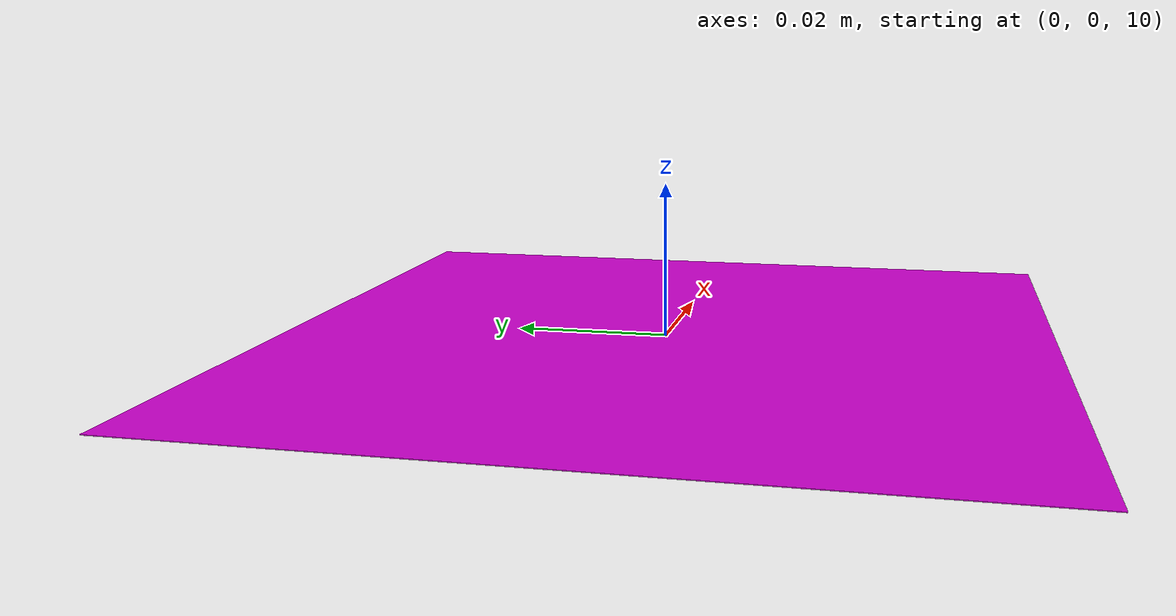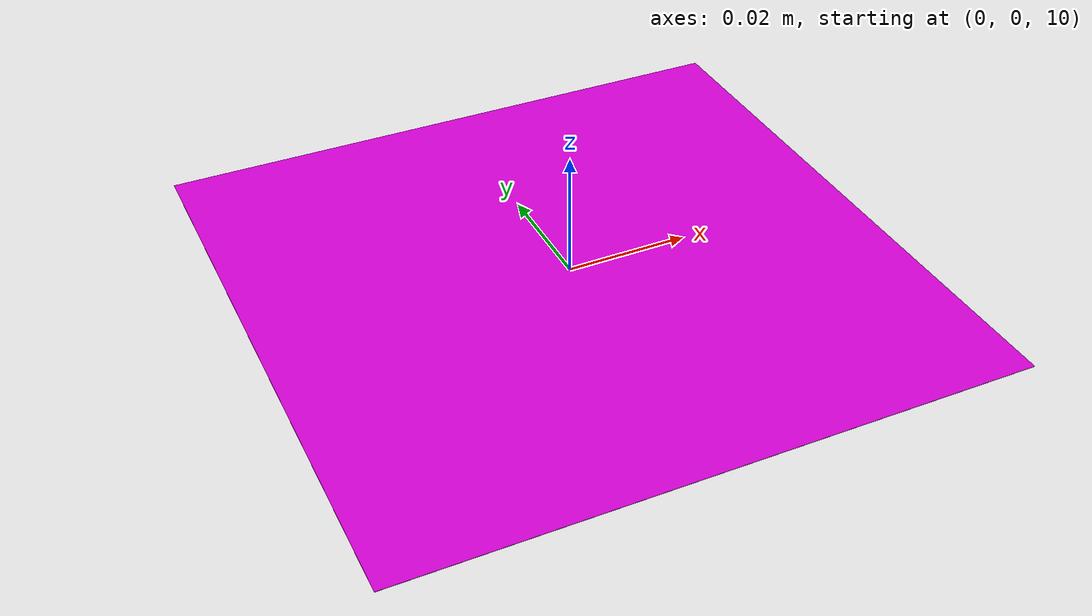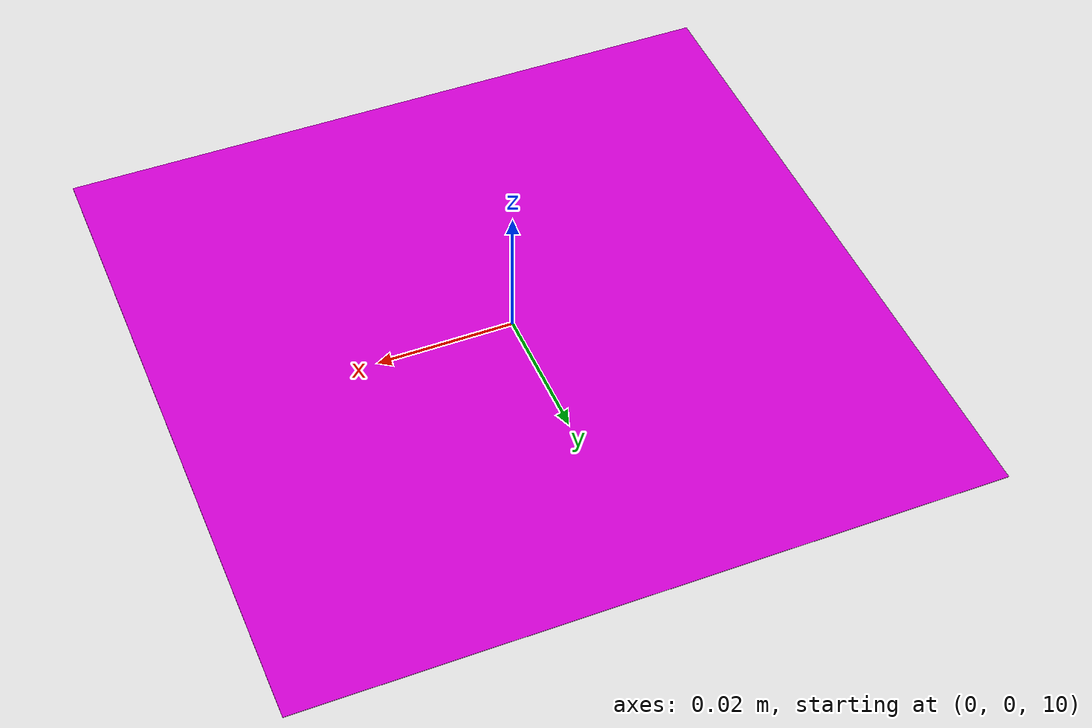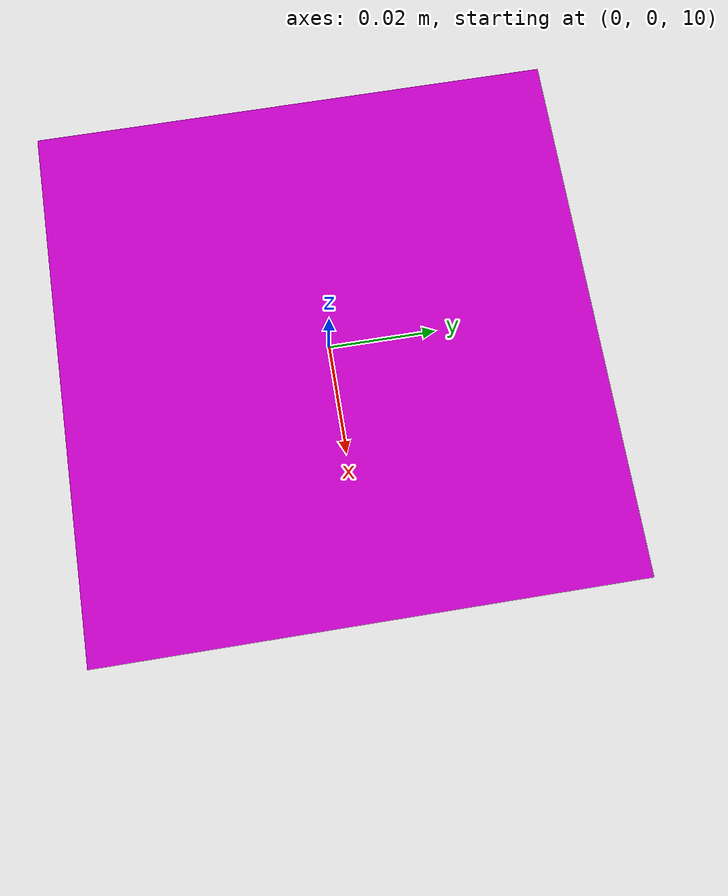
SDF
<?xml version="1.0" ?>
<sdf version="1.11">
  <world name="senco">
    <scene>
      <ambient>1.0 1.0 1.0</ambient>
      <background>0.8 0.8 0.8</background>
    </scene>

    <physics name="1ms" type="dart">
      <max_step_size>0.001</max_step_size>
      <real_time_factor>0</real_time_factor>
    </physics>

    <light type="directional" name="sun">
      <cast_shadows>true</cast_shadows>
      <pose>0 0 15 0 0 0</pose>
      <diffuse>0.8 0.8 0.8 1</diffuse>
      <specular>0.2 0.2 0.2 1</specular>
      <attenuation>
        <range>1000</range>
        <constant>0.9</constant>
        <linear>0.01</linear>
        <quadratic>0.001</quadratic>
      </attenuation>
      <direction>-0.5 0.1 -0.9</direction>
    </light>

    <model name="camera">
      <pose>0 0 10.0 0 0 0</pose>
      <static>true</static>
      <link name="link">
        <collision name="collision">
          <geometry>
            <plane>
              <normal>0 0 1</normal>
              <size>0.1 0.1</size>
            </plane>
          </geometry>
        </collision>
        <visual name="visual">
          <geometry>
            <plane>
              <normal>0 0 1</normal>
              <size>0.1 0.1</size>
            </plane>
          </geometry>
          <material>
            <ambient>0.8 0.0 0.8 1</ambient>
            <diffuse>0.8 0.0 0.8 1</diffuse>
            <specular>0.8 0.0 0.8 1</specular>
          </material>
        </visual>
      </link>
      <plugin filename="sensorconfig" name="sensorconfig::SensorConfig">
      <!-- camera params -->
      <type>camera</type>
      </plugin>
    </model>

  </world>
</sdf>
